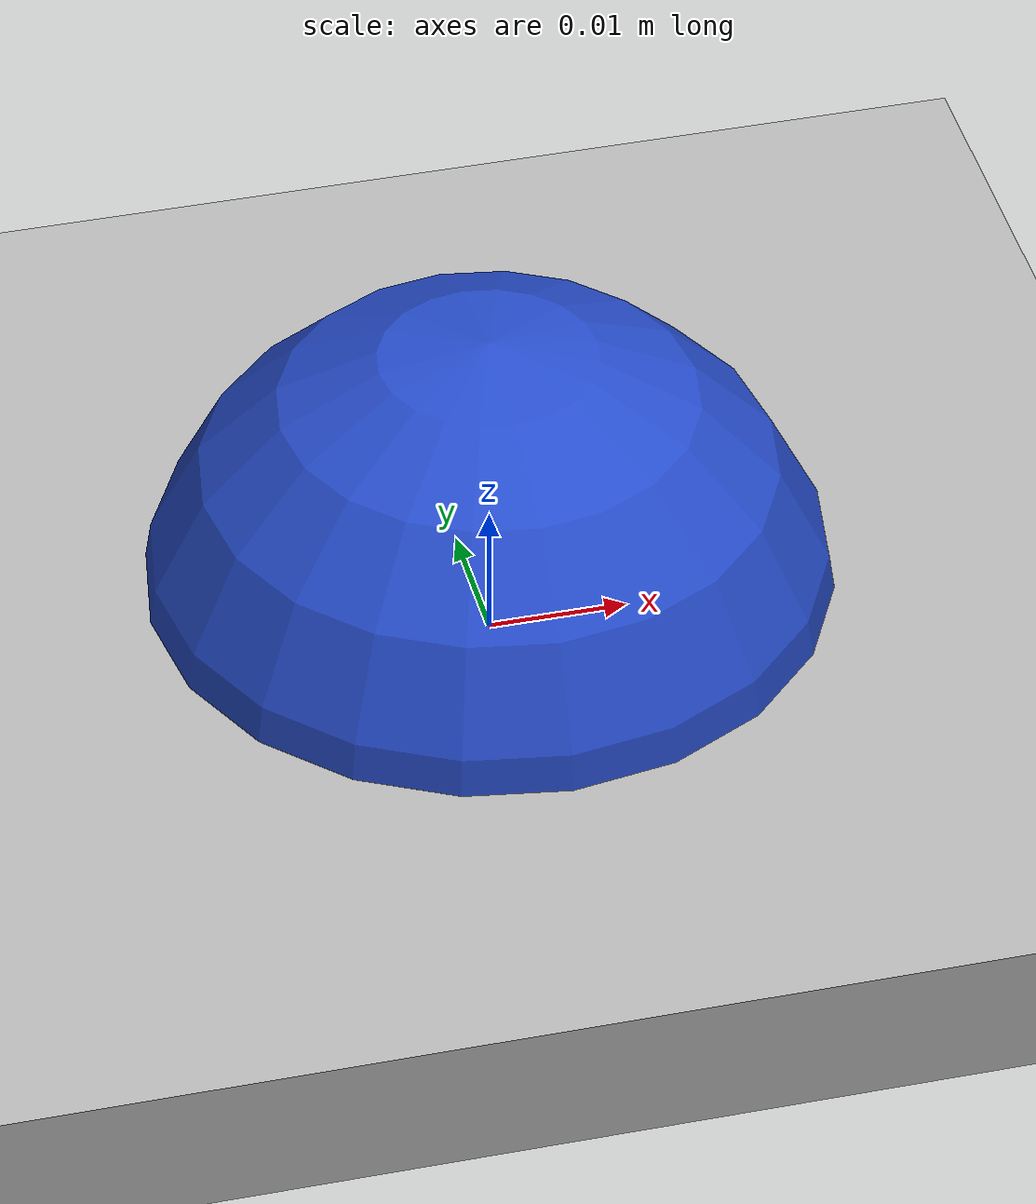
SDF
<?xml version='1.0'?>
<sdf version='1.7'>
  <model name='Test_Plane'>
    <static>0</static>
    <link name='plane'>
      <pose>0 0 0.0 0 -0 0</pose>
      <inertial>
        <inertia>
          <ixx>500</ixx>
          <ixy>0</ixy>
          <ixz>0</ixz>
          <iyy>500</iyy>
          <iyz>0</iyz>
          <izz>1000</izz>
        </inertia>
        <mass>1500</mass>
        <pose>0 0 0 0 -0 0</pose>
      </inertial>
      <self_collide>0</self_collide>
      <enable_wind>0</enable_wind>
      <kinematic>0</kinematic>
      <gravity>0</gravity>
      <visual name='plane_visual'>
        <cast_shadows>0</cast_shadows>
        <pose>0 0 0.0 0 0 0</pose>
        <geometry>
          <box>
            <size>1 1 0.01</size>
          </box>
        </geometry>
        <material>
          <script>
            <uri>model://Test_Plane/materials/scripts</uri>
            <uri>model://Test_Plane/materials/textures</uri>
            <name>ceilingMat/Checkerboard</name>
          </script>
          <shader type='pixel'>
            <normal_map>__default__</normal_map>
          </shader>
          <emissive>0 0 0 1</emissive>
        </material>
      </visual>
      <visual name='plane_center'>
        <cast_shadows>0</cast_shadows>
        <pose>0 0 0 0 0 0</pose>
        <geometry>
          <sphere>
            <radius>0.025</radius>
          </sphere>
        </geometry>
        <material>
          <script>
            <name>Gazebo/Blue</name>
            <uri>file://media/materials/scripts/gazebo.material</uri>
          </script>
          <shader type='pixel'>
            <normal_map>__default__</normal_map>
          </shader>
        </material>
      </visual>
      <collision name='plane_collision'>
        <laser_retro>0</laser_retro>
        <max_contacts>10</max_contacts>
        <pose>0 0 0 0 -0 0</pose>
        <geometry>
          <box>
            <size>1 1 0.01</size>
          </box>
        </geometry>
        <surface>
          <friction>
            <ode>
              <mu>100000</mu>
              <mu2>100000</mu2>
              <fdir1>0 0 0</fdir1>
              <slip1>0</slip1>
              <slip2>0</slip2>
            </ode>
            <torsional>
              <coefficient>1</coefficient>
              <patch_radius>0</patch_radius>
              <surface_radius>0</surface_radius>
              <use_patch_radius>1</use_patch_radius>
              <ode>
                <slip>0</slip>
              </ode>
            </torsional>
          </friction>
          <bounce>
            <restitution_coefficient>0</restitution_coefficient>
            <threshold>1e+06</threshold>
          </bounce>
          <contact>
            <collide_without_contact>0</collide_without_contact>
            <collide_without_contact_bitmask>1</collide_without_contact_bitmask>
            <collide_bitmask>65535</collide_bitmask>
            <ode>
              <soft_cfm>0</soft_cfm>
              <soft_erp>0.2</soft_erp>
              <kp>1e+13</kp>
              <kd>1</kd>
              <max_vel>0.01</max_vel>
              <min_depth>0</min_depth>
            </ode>
            <bullet>
              <split_impulse>1</split_impulse>
              <split_impulse_penetration_threshold>-0.01</split_impulse_penetration_threshold>
              <soft_cfm>0</soft_cfm>
              <soft_erp>0.2</soft_erp>
              <kp>1e+13</kp>
              <kd>1</kd>
            </bullet>
          </contact>
        </surface>
      </collision>
      <sensor name='plane_contact_sensor' type='contact'>
        <always_on>1</always_on>
        <visualize>1</visualize>
        <contact>
          <collision>plane_collision</collision>
          <topic>__default_topic__</topic>
        </contact>
        <plugin name='contact_plugin' filename='libgazebo_ros_bumper.so'>
          <bumperTopicName>/ENV/BodyContact</bumperTopicName>
          <frameName>plane</frameName>
          <alwaysOn>true</alwaysOn>
          <updateRate>500</updateRate>
        </plugin>
        <pose>0 0 0 0 -0 0</pose>
      </sensor>
    </link>
    <joint name="plane_joint" type="fixed">
      <parent>world</parent>
      <child>plane</child>
      <pose>0 0 0 0 0 0</pose>
      <physics>
        <ode>
        </ode>
        <provide_feedback>true</provide_feedback>
      </physics>
    </joint>
    <static>0</static>
    <allow_auto_disable>1</allow_auto_disable>

    <plugin name="ForceTorque_Sensor" filename="libgazebo_ros_ft_sensor.so">
      <jointName>plane_joint</jointName>
      <topicName>/ENV/Surface_FT_sensor</topicName>
      <updateRate>500</updateRate>
  </plugin>
  </model>
</sdf>
